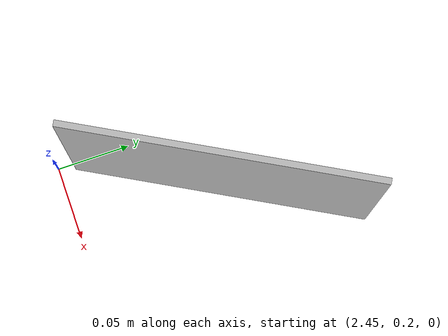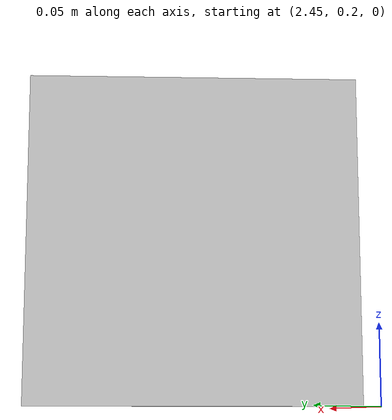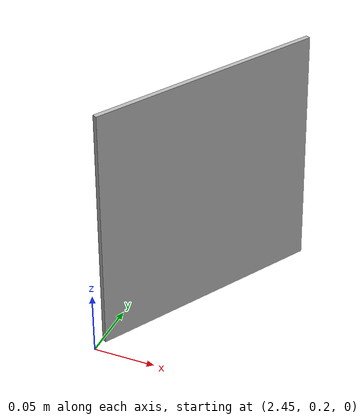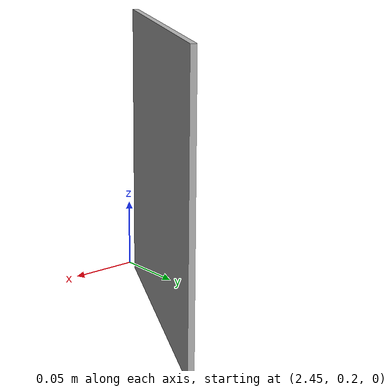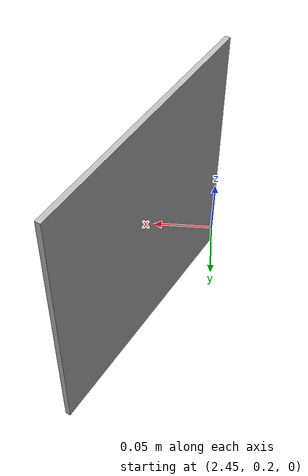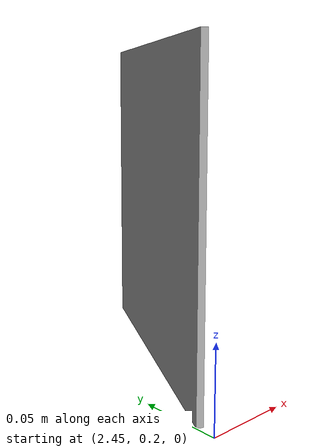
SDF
<?xml version="1.0" ?><sdf version="1.6">
  <model name="qr7">
    <static>true</static>
    <link name="link">
      <visual name="visual">
        <geometry>
          <mesh>
            <uri>model://qr7/meshes/qr7.dae</uri>
          <scale>0.4 0.4 0.4</scale></mesh>
        </geometry>
      </visual>
    </link>
    <pose>2.5 0.3 0 0 -0 -0.5</pose>
  </model>
</sdf>
